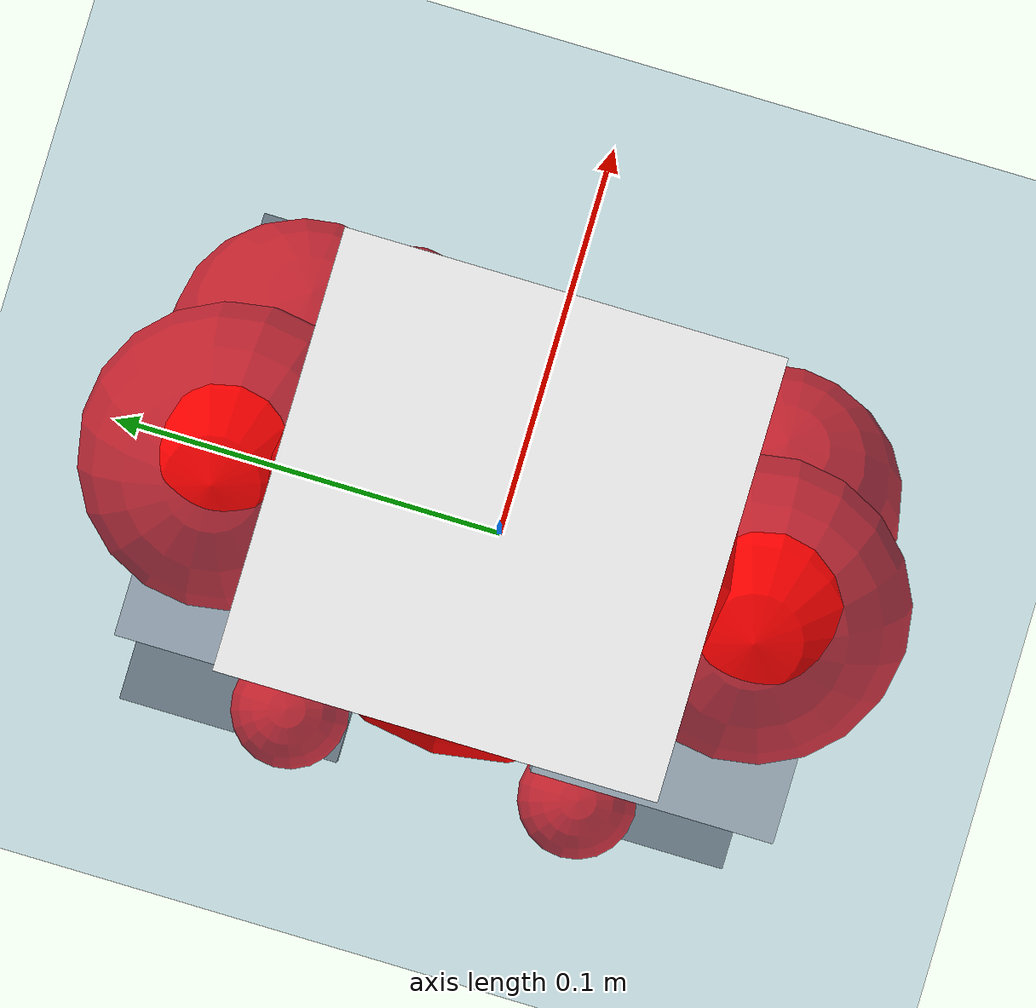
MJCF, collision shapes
<mujoco model="pi_12dof_release_v1">
  <compiler angle="radian" assetdir="assets" balanceinertia="true" inertiafromgeom="false"/>

  <option timestep="0.005" density="1.2" viscosity="2e-05"/>

  <size nkey="1"/>

  <visual>
    <quality shadowsize="8192"/>
    <map shadowclip="0.5"/>
  </visual>

  <default>
    <default class="/">
      <joint armature="0.01" damping="0.01" frictionloss="0.01"/>
      <geom contype="0" conaffinity="0" group="1" solref="-1000 -80"/>
      <site size="0.01 0.005 0.005" group="5"/>
      <general forcelimited="true" biastype="affine" gainprm="20" biasprm="0 -20 -0.5"/>
      <default class="foot">
        <geom size="0.0845 0.036 0.005" type="box" condim="6" group="4" priority="1" friction="0.9 0.2 0.2" solimp="0.015 1 0.005"/>
      </default>
      <default class="reward_collision_sphere">
        <geom group="5" rgba="1 0 0 1"/>
      </default>
    </default>
  </default>

  <asset>
    <texture type="skybox" colorspace="auto" name="//unnamed_texture_0" builtin="gradient" rgb1="0.95 0.95 0.95" rgb2="0.95 0.95 0.95" width="100" height="600"/>
    <texture type="2d" colorspace="auto" name="texplane" builtin="checker" rgb1="0.345 0.575 0.748" rgb2="0.345 0.575 0.748" markrgb="1 1 1" width="512" height="512"/>
    <material name="MatPlane" class="/" texture="texplane" texuniform="true" texrepeat="2 2" specular="0.9"/>
    <mesh name="baselink_1" class="/" file="baselink_1.STL"/>
    <mesh name="r_hip_pitch_link" class="/" file="r_hip_pitch_link.STL"/>
    <mesh name="r_hip_roll_link" class="/" file="r_hip_roll_link.STL"/>
    <mesh name="r_thigh_link" class="/" file="r_thigh_link.STL"/>
    <mesh name="r_calf_link" class="/" file="r_calf_link.STL"/>
    <mesh name="r_ankle_pitch_link" class="/" file="r_ankle_pitch_link.STL"/>
    <mesh name="r_ankle_roll_link" class="/" file="r_ankle_roll_link.STL"/>
    <mesh name="l_hip_pitch_link" class="/" file="l_hip_pitch_link.STL"/>
    <mesh name="l_hip_roll_link" class="/" file="l_hip_roll_link.STL"/>
    <mesh name="l_thigh_link" class="/" file="l_thigh_link.STL"/>
    <mesh name="l_calf_link" class="/" file="l_calf_link.STL"/>
    <mesh name="l_ankle_pitch_link" class="/" file="l_ankle_pitch_link.STL"/>
    <mesh name="l_ankle_roll_link" class="/" file="l_ankle_roll_link.STL"/>
  </asset>

  <worldbody>
    <geom name="floor" class="/" size="100 100 0.125" type="plane" group="0" material="MatPlane"/>
    <light name="toplight_shadow" class="/" pos="0 0 5" dir="0.0990148 0.0990148 -0.990148" type="directional" ambient="0.04 0.04 0.04" diffuse="0.55 0.55 0.55" specular="0.12 0.12 0.12"/>
    <light name="toplight_fill" class="/" pos="0 0 5" dir="0.0990148 0.0990148 -0.990148" type="directional" castshadow="false" ambient="0.04 0.04 0.04" diffuse="0.3 0.3 0.3" specular="0.08 0.08 0.08"/>
    <body name="trunk" pos="8.92435e-05 -0.000142383 -0.000678951" quat="1 -0.000211036 0.000411513 -0.000129817">
      <inertial pos="0.000551791 -0.00173271 0.0440547" quat="0.694981 0.00938321 0.0101881 0.718895" mass="2.23265" diaginertia="0.01234 0.00520564 0.00596004"/>
      <joint name="//unnamed_joint_0" type="free"/>
      <geom name="//unnamed_geom_1" class="/" type="mesh" density="0" rgba="1 1 1 1" mesh="baselink_1"/>
      <geom name="//unnamed_geom_2" class="/" size="0.050279 0.050279 0.050279" pos="0 0 0.0858803" type="box" rgba="1 1 1 1"/>
      <geom name="//unnamed_geom_3" class="reward_collision_sphere" size="0.0553069" pos="0 0 0.0751452"/>
      <site name="imu" class="/" pos="0.00572465 0.000488127 -0.00562288" size="0.0100558"/>
      <camera name="track" class="/" pos="0 -1.79168 0" quat="0.707107 0.707107 0 0" mode="trackcom"/>
      <camera name="ego_camera" class="/" pos="0.078555 0 0.193231" quat="-0.5 -0.5 0.5 0.5"/>
      <body name="r_hip_pitch_link" pos="1.45079e-05 -0.0198394 -0.0345681" quat="0.992199 2.72681e-05 -0.124661 -3.70408e-05">
        <inertial pos="0.0011847 -0.0503698 3.30244e-05" quat="-0.0189101 0.705781 -0.0285693 0.707601" mass="0.363324" diaginertia="0.000133752 5.51141e-05 0.000115569"/>
        <joint name="r_hip_pitch_joint" class="/" pos="0 0 0" axis="-0.000847499 -0.999993 -0.00374277" range="-1.74037 1.22146" armature="0.00971776" damping="0.0131737" frictionloss="0.0105197"/>
        <geom name="//unnamed_geom_4" class="/" type="mesh" density="0" rgba="0.75294 0.75294 0.75294 1" mesh="r_hip_pitch_link"/>
        <geom name="//unnamed_geom_5" class="/" size="0.00050279 0.00050279 0.00050279" type="box" rgba="0.75294 0.75294 0.75294 1"/>
        <body name="r_hip_roll_link" pos="0.00116085 -0.0482409 -0.000688753" quat="1 0.000235689 0.000287753 4.3701e-05">
          <inertial pos="-0.000723114 5.28658e-05 -0.066624" quat="0.705749 -0.0792379 -0.0825952 0.699155" mass="0.395882" diaginertia="0.000419895 0.000156876 0.000181732"/>
          <joint name="r_hip_roll_joint" class="/" pos="0 0 0" axis="-0.999999 0.00107489 0.00129286" range="-0.109971 0.496157" armature="0.0104134" damping="0" frictionloss="0.0107147"/>
          <geom name="//unnamed_geom_6" class="/" type="mesh" density="0" rgba="0.75294 0.75294 0.75294 1" mesh="r_hip_roll_link"/>
          <geom name="//unnamed_geom_7" class="/" size="0.00050279 0.00050279 0.00050279" type="box" rgba="0.75294 0.75294 0.75294 1"/>
          <geom name="//unnamed_geom_8" class="reward_collision_sphere" size="0.0402232"/>
          <body name="r_thigh_link" pos="-0.000348738 0.00170693 -0.0741204" quat="1 5.56332e-05 -7.29503e-06 6.78194e-05">
            <inertial pos="3.60227e-06 0.000562204 -0.0499639" quat="0.737407 0.675448 0.00056274 0.000252276" mass="0.11425" diaginertia="0.000155823 5.4504e-05 8.23849e-05"/>
            <joint name="r_thigh_joint" class="/" pos="0 0 0" axis="0.00025778 -0.000139103 -1" range="-0.296377 0.593841" armature="0.0107243" damping="0.00995205" frictionloss="0.00956948"/>
            <geom name="//unnamed_geom_9" class="/" type="mesh" density="0" rgba="0.75294 0.75294 0.75294 1" mesh="r_thigh_link"/>
            <geom name="//unnamed_geom_10" class="/" size="0.00050279 0.00050279 0.00050279" type="box" rgba="0.75294 0.75294 0.75294 1"/>
            <body name="r_calf_link" pos="-0.00122045 -0.00332269 -0.0755265" quat="0.947654 -3.07223e-05 0.3193 -8.26349e-06">
              <inertial pos="0.000151354 -0.00273067 -0.0744394" quat="0.999961 -0.00743761 -0.0048214 0.000501875" mass="0.831756" diaginertia="0.00445708 0.00205908 0.000250672"/>
              <joint name="r_calf_joint" class="/" pos="0 0 0" axis="-0.00128275 -0.999992 0.00370319" stiffness="0.00208278" range="-1.65007 0.62981" armature="0.0105966" damping="0.0105762" frictionloss="0.0101054"/>
              <geom name="//unnamed_geom_11" class="/" type="mesh" density="0" rgba="0.75294 0.75294 0.75294 1" mesh="r_calf_link"/>
              <geom name="//unnamed_geom_12" class="/" size="0.00050279 0.00050279 0.00050279" type="box" rgba="0.75294 0.75294 0.75294 1"/>
              <geom name="//unnamed_geom_13" class="reward_collision_sphere" size="0.0402232"/>
              <body name="r_ankle_pitch_link" pos="3.79004e-05 0.00117172 -0.150974" quat="0.980024 0.00010226 -0.198878 -0.000184227">
                <inertial pos="0.00605492 0.00326591 0.000630788" quat="0.000453393 0.705602 -0.00517982 0.70859" mass="0.178221" diaginertia="0.000389133 0.000126693 0.000172443"/>
                <joint name="r_ankle_pitch_joint" class="/" pos="0 0 0" axis="-0.00411488 -0.999992 -0.000121671" range="-1.28356 0.49047" armature="0.00963521" damping="0.00413158" frictionloss="0.00990337"/>
                <geom name="//unnamed_geom_14" class="/" type="mesh" density="0" rgba="0.75294 0.75294 0.75294 1" mesh="r_ankle_pitch_link"/>
                <geom name="//unnamed_geom_15" class="/" size="0.0392177 0.0402232 0.0251395" type="box" rgba="0.75294 0.75294 0.75294 1"/>
                <body name="r_ankle_roll_link" pos="0.0805695 0.0037449 -0.000291441" quat="1 -3.40642e-05 -0.000318733 -0.000220839">
                  <inertial pos="-0.0251855 6.40686e-05 -0.0159273" quat="0.565815 0.429352 0.430151 0.557208" mass="0.522577" diaginertia="0.00141204 0.000602916 0.000405085"/>
                  <joint name="r_ankle_roll_joint" class="/" pos="0 0 0" axis="-0.999994 -0.000906543 0.00337647" range="-0.161703 0.145421" armature="0.0107217" damping="0.00631756" frictionloss="0.00998767"/>
                  <geom name="//unnamed_geom_16" class="/" type="mesh" density="0" rgba="0.75294 0.75294 0.75294 1" mesh="r_ankle_roll_link"/>
                  <geom name="//unnamed_geom_17" class="/" type="mesh" rgba="0.75294 0.75294 0.75294 1" mesh="r_ankle_roll_link"/>
                  <geom name="right_foot" class="foot" size="0.0807143 0.0351599 0.00477441" pos="-0.0534174 0 -0.0472342"/>
                  <geom name="//unnamed_geom_19" class="reward_collision_sphere" size="0.0402232" pos="-0.05237 0 -0.0214701"/>
                  <geom name="//unnamed_geom_20" class="reward_collision_sphere" size="0.0201116" pos="0.015711 0.0179168 -0.0429401"/>
                  <geom name="//unnamed_geom_21" class="reward_collision_sphere" size="0.0201116" pos="-0.125688 0.0179168 -0.0429401"/>
                  <site name="right_foot" class="foot" pos="-0.0534174 0 -0.0472342" size="0.0100558"/>
                </body>
              </body>
            </body>
          </body>
        </body>
      </body>
      <body name="l_hip_pitch_link" pos="0.000633919 0.0212056 -0.0359609" quat="0.992196 -3.93714e-06 -0.124686 2.02193e-05">
        <inertial pos="0.000927639 0.0476615 -0.00162171" quat="-0.0387136 0.705724 0.0286997 0.706846" mass="0.402833" diaginertia="0.000168273 6.14707e-05 0.0001476"/>
        <joint name="l_hip_pitch_joint" class="/" pos="0 0 0" axis="0.0011716 0.999998 -0.00173202" range="-1.2395 1.75458" armature="0.0099042" damping="0.00776411" frictionloss="0.0103189"/>
        <geom name="//unnamed_geom_22" class="/" type="mesh" density="0" rgba="0.75294 0.75294 0.75294 1" mesh="l_hip_pitch_link"/>
        <geom name="//unnamed_geom_23" class="/" size="0.00050279 0.00050279 0.00050279" type="box" rgba="0.75294 0.75294 0.75294 1"/>
        <body name="l_hip_roll_link" pos="-0.000124267 0.0512645 -0.000447294" quat="1 -0.00017659 2.52575e-06 0.000260599">
          <inertial pos="-0.0031339 -0.00073537 -0.0670941" quat="0.699146 -0.0756651 -0.0785489 0.706611" mass="0.401241" diaginertia="0.00041324 0.000160131 0.000182237"/>
          <joint name="l_hip_roll_joint" class="/" pos="0 0 0" axis="-0.999998 -4.1207e-05 -0.00202805" range="-0.513532 0.115042" armature="0.0100774" damping="0.00557447" frictionloss="0.0104925"/>
          <geom name="//unnamed_geom_24" class="/" type="mesh" density="0" rgba="0.75294 0.75294 0.75294 1" mesh="l_hip_roll_link"/>
          <geom name="//unnamed_geom_25" class="/" size="0.00050279 0.00050279 0.00050279" type="box" rgba="0.75294 0.75294 0.75294 1"/>
          <geom name="//unnamed_geom_26" class="reward_collision_sphere" size="0.0402232"/>
          <body name="l_thigh_link" pos="0.000247694 -0.00123343 -0.0733312" quat="1 7.6874e-05 0.000210009 2.93897e-05">
            <inertial pos="-0.000595451 -0.000973319 -0.0502211" quat="0.67425 0.738497 -0.000369202 0.00304968" mass="0.117174" diaginertia="0.000162156 5.63233e-05 8.4011e-05"/>
            <joint name="l_thigh_joint" class="/" pos="0 0 0" axis="0.00102692 -0.00112062 -0.999999" range="-0.627217 0.312597" armature="0.00975724" damping="0.00258508" frictionloss="0.0100559"/>
            <geom name="//unnamed_geom_27" class="/" type="mesh" density="0" rgba="0.75294 0.75294 0.75294 1" mesh="l_thigh_link"/>
            <geom name="//unnamed_geom_28" class="/" size="0.00050279 0.00050279 0.00050279" type="box" rgba="0.75294 0.75294 0.75294 1"/>
            <body name="l_calf_link" pos="0.00125443 0.000784984 -0.0760852" quat="0.947685 -0.000339745 0.319206 -0.000115048">
              <inertial pos="0.00124935 0.00198521 -0.0767627" quat="0.999971 -0.0034516 -0.00649218 0.00221466" mass="0.813447" diaginertia="0.00433531 0.00197632 0.000243648"/>
              <joint name="l_calf_joint" class="/" pos="0 0 0" axis="3.09042e-05 1 -0.000271171" range="-0.653947 1.63748" armature="0.0102711" damping="0.00273507" frictionloss="0.0096673"/>
              <geom name="//unnamed_geom_29" class="/" type="mesh" density="0" rgba="0.75294 0.75294 0.75294 1" mesh="l_calf_link"/>
              <geom name="//unnamed_geom_30" class="/" size="0.00050279 0.00050279 0.00050279" type="box" rgba="0.75294 0.75294 0.75294 1"/>
              <geom name="//unnamed_geom_31" class="reward_collision_sphere" size="0.0402232"/>
              <body name="l_ankle_pitch_link" pos="0.00202261 -0.0003837 -0.151341" quat="0.980055 -3.56637e-05 -0.198728 -0.000178399">
                <inertial pos="0.00480742 -0.00167717 0.000337705" quat="-0.00248656 0.707154 0.00148471 0.707054" mass="0.180627" diaginertia="0.000391391 0.0001288 0.000171167"/>
                <joint name="l_ankle_pitch_joint" class="/" pos="0 0 0" axis="-0.000436044 0.999999 -0.000994368" range="-0.486303 1.3157" armature="0.0103315" damping="0.00833926" frictionloss="0.00959435"/>
                <geom name="//unnamed_geom_32" class="/" type="mesh" density="0" rgba="0.75294 0.75294 0.75294 1" mesh="l_ankle_pitch_link"/>
                <geom name="//unnamed_geom_33" class="/" size="0.0392177 0.0402232 0.0251395" type="box" rgba="0.75294 0.75294 0.75294 1"/>
                <body name="l_ankle_roll_link" pos="0.0780865 0.000709085 0.000172827" quat="1 -0.000571067 3.86358e-05 0.000197478">
                  <inertial pos="-0.0256419 0.0005909 -0.0153301" quat="0.559911 0.430681 0.434156 0.559037" mass="0.532536" diaginertia="0.00144819 0.000595005 0.000407987"/>
                  <joint name="l_ankle_roll_joint" class="/" pos="0 0 0" axis="-1 -0.000155079 0.000406427" range="-0.143142 0.161818" armature="0.0101592" damping="0.014794" frictionloss="0.00957033"/>
                  <geom name="//unnamed_geom_34" class="/" type="mesh" density="0" rgba="0.75294 0.75294 0.75294 1" mesh="l_ankle_roll_link"/>
                  <geom name="//unnamed_geom_35" class="/" type="mesh" rgba="0.75294 0.75294 0.75294 1" mesh="l_ankle_roll_link"/>
                  <geom name="left_foot" class="foot" size="0.0849987 0.0379677 0.00482847" pos="-0.0534174 0 -0.0472342"/>
                  <geom name="//unnamed_geom_37" class="reward_collision_sphere" size="0.0402232" pos="-0.05237 0 -0.0214701"/>
                  <geom name="//unnamed_geom_38" class="reward_collision_sphere" size="0.0201116" pos="0.015711 -0.0179168 -0.0429401"/>
                  <geom name="//unnamed_geom_39" class="reward_collision_sphere" size="0.0201116" pos="-0.125688 -0.0179168 -0.0429401"/>
                  <site name="left_foot" class="foot" pos="-0.0534174 0 -0.0472342" size="0.0100558"/>
                </body>
              </body>
            </body>
          </body>
        </body>
      </body>
    </body>
  </worldbody>

  <contact>
    <pair class="/" geom1="floor" geom2="right_foot" name="//unnamed_contact_1"/>
    <pair class="/" geom1="floor" geom2="left_foot" name="//unnamed_contact_0"/>
  </contact>

  <actuator>
    <general name="r_hip_pitch_joint" class="/" joint="r_hip_pitch_joint" forcerange="-21.3003 21.3003" gainprm="19.2379" biasprm="0 -19.2379 -0.503134"/>
    <general name="r_hip_roll_joint" class="/" joint="r_hip_roll_joint" forcerange="-21.0277 21.0277" gainprm="19.2379" biasprm="0 -19.2379 -0.503134"/>
    <general name="r_thigh_joint" class="/" joint="r_thigh_joint" forcerange="-21.2469 21.2469" gainprm="19.2379" biasprm="0 -19.2379 -0.503134"/>
    <general name="r_calf_joint" class="/" joint="r_calf_joint" forcerange="-21.9033 21.9033" gainprm="19.2379" biasprm="0 -19.2379 -0.503134"/>
    <general name="r_ankle_pitch_joint" class="/" joint="r_ankle_pitch_joint" forcerange="-21.4817 21.4817" gainprm="19.2379" biasprm="0 -19.2379 -0.503134"/>
    <general name="r_ankle_roll_joint" class="/" joint="r_ankle_roll_joint" forcerange="-20.7524 20.7524" gainprm="19.2379" biasprm="0 -19.2379 -0.503134"/>
    <general name="l_hip_pitch_joint" class="/" joint="l_hip_pitch_joint" forcerange="-21.1586 21.1586" gainprm="19.2379" biasprm="0 -19.2379 -0.503134"/>
    <general name="l_hip_roll_joint" class="/" joint="l_hip_roll_joint" forcerange="-20.0682 20.0682" gainprm="19.2379" biasprm="0 -19.2379 -0.503134"/>
    <general name="l_thigh_joint" class="/" joint="l_thigh_joint" forcerange="-21.619 21.619" gainprm="19.2379" biasprm="0 -19.2379 -0.503134"/>
    <general name="l_calf_joint" class="/" joint="l_calf_joint" forcerange="-20.9062 20.9062" gainprm="19.2379" biasprm="0 -19.2379 -0.503134"/>
    <general name="l_ankle_pitch_joint" class="/" joint="l_ankle_pitch_joint" forcerange="-20.8196 20.8196" gainprm="19.2379" biasprm="0 -19.2379 -0.503134"/>
    <general name="l_ankle_roll_joint" class="/" joint="l_ankle_roll_joint" forcerange="-20.8865 20.8865" gainprm="19.2379" biasprm="0 -19.2379 -0.503134"/>
  </actuator>

  <sensor>
    <gyro site="imu" name="imu_angular_velocity"/>
    <velocimeter site="imu" name="imu_linear_velocity"/>
    <framelinvel objtype="site" objname="left_foot" name="left_foot_global_linear_velocity"/>
    <framelinvel objtype="site" objname="right_foot" name="right_foot_global_linear_velocity"/>
  </sensor>

  <keyframe>
    <key name="home" qpos="0 0 0.291 1 0 0 0 0.4 0 0 -0.8 0.4 0 -0.4 0 0 0.8 -0.4 0"/>
  </keyframe>
</mujoco>
